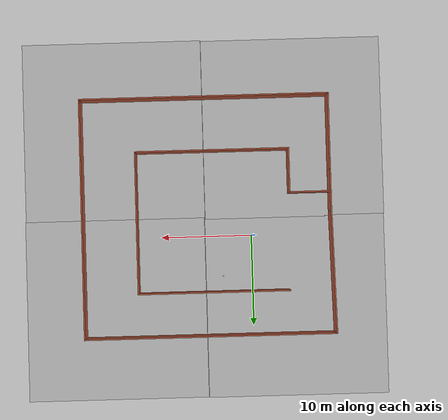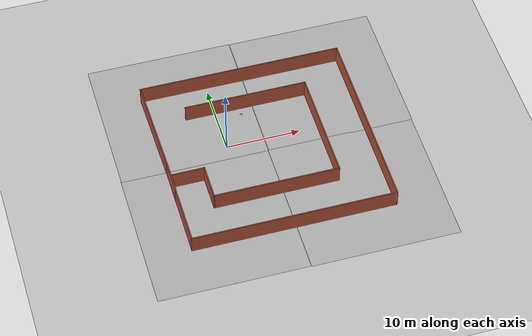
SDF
<sdf version="1.6">
 <world name="default">
  <light name="sun" type="directional">
   <pose>0 0 10 0 -0 0</pose>
   <diffuse>0.8 0.8 0.8 1</diffuse>
   <specular>0.2 0.2 0.2 1</specular>
   <attenuation>
    <range>1000</range>
    <constant>0.9</constant>
    <linear>0.01</linear>
    <quadratic>0.001</quadratic>
   </attenuation>
   <direction>-0.5 0.1 -0.9</direction>
  </light>
  <model name="ground_plane">
   <static>1</static>
   <link name="link">
    <collision name="collision">
     <geometry><plane><normal>0 0 1</normal><size>100 100</size></plane></geometry>
     <surface>
      <contact><collide_bitmask>65535</collide_bitmask></contact>
      <friction><ode><mu>100</mu><mu2>50</mu2></ode></friction>
     </surface>
    </collision>
    <visual name="visual">
     <cast_shadows>0</cast_shadows>
     <geometry><plane><normal>0 0 1</normal><size>100 100</size></plane></geometry>
     <material>
      <script><uri>file://media/materials/scripts/gazebo.material</uri><name>Gazebo/Grey</name></script>
     </material>
    </visual>
   </link>
  </model>
  <gravity>0 0 -9.8</gravity>
  <magnetic_field>6e-06 2.3e-05 -4.2e-05</magnetic_field>
  <atmosphere type="adiabatic"/>
  <physics name="default_physics" default="0" type="ode">
   <max_step_size>0.001</max_step_size>
   <real_time_factor>1</real_time_factor>
   <real_time_update_rate>1000</real_time_update_rate>
  </physics>
  <scene><ambient>0.4 0.4 0.4 1</ambient><background>0.7 0.7 0.7 1</background><shadows>1</shadows></scene>
  <audio><device>default</device></audio>
  <spherical_coordinates>
   <surface_model>EARTH_WGS84</surface_model>
   <latitude_deg>0</latitude_deg>
   <longitude_deg>0</longitude_deg>
   <elevation>0</elevation>
   <heading_deg>0</heading_deg>
  </spherical_coordinates>
  <model name="mazeWorld">
   <pose>4.82132 -2.2343 0 0 -0 0</pose>
   <link name="Wall_10">
    <collision name="Wall_10_Collision">
     <geometry><box><size>13.5523 0.15 2.5</size></box></geometry>
     <pose>0 0 1.25 0 -0 0</pose>
    </collision>
    <visual name="Wall_10_Visual">
     <pose>0 0 1.25 0 -0 0</pose>
     <geometry><box><size>13.5523 0.15 2.5</size></box></geometry>
     <material>
      <script><uri>file://media/materials/scripts/gazebo.material</uri><name>Gazebo/Bricks</name></script>
      <ambient>1 1 1 1</ambient>
     </material>
     <meta><layer>0</layer></meta>
    </visual>
    <pose>-13.6743 6.47431 0 0 -0 -1.55214</pose>
   </link>
   <link name="Wall_12">
    <collision name="Wall_12_Collision">
     <geometry><box><size>16.75 0.15 2.5</size></box></geometry>
     <pose>0 0 1.25 0 -0 0</pose>
    </collision>
    <visual name="Wall_12_Visual">
     <pose>0 0 1.25 0 -0 0</pose>
     <geometry><box><size>16.75 0.15 2.5</size></box></geometry>
     <material>
      <script><uri>file://media/materials/scripts/gazebo.material</uri><name>Gazebo/Bricks</name></script>
      <ambient>1 1 1 1</ambient>
     </material>
     <meta><layer>0</layer></meta>
    </visual>
    <pose>-0.493258 8.36187 0 0 -0 0</pose>
   </link>
   <link name="Wall_13">
    <collision name="Wall_13_Collision">
     <geometry><box><size>15.75 0.15 2.5</size></box></geometry>
     <pose>0 0 1.25 0 -0 0</pose>
    </collision>
    <visual name="Wall_13_Visual">
     <pose>0 0 1.25 0 -0 0</pose>
     <geometry><box><size>15.75 0.15 2.5</size></box></geometry>
     <material>
      <script><uri>file://media/materials/scripts/gazebo.material</uri><name>Gazebo/Bricks</name></script>
      <ambient>1 1 1 1</ambient>
     </material>
     <meta><layer>0</layer></meta>
    </visual>
    <pose>7.80674 0.561867 0 0 -0 -1.5708</pose>
   </link>
   <link name="Wall_14">
    <collision name="Wall_14_Collision">
     <geometry><box><size>17 0.15 2.5</size></box></geometry>
     <pose>0 0 1.25 0 -0 0</pose>
    </collision>
    <visual name="Wall_14_Visual">
     <pose>0 0 1.25 0 -0 0</pose>
     <geometry><box><size>17 0.15 2.5</size></box></geometry>
     <material>
      <script><uri>file://media/materials/scripts/gazebo.material</uri><name>Gazebo/Bricks</name></script>
      <ambient>1 1 1 1</ambient>
     </material>
     <meta><layer>0</layer></meta>
    </visual>
    <pose>-0.618258 -7.23813 0 0 -0 3.14159</pose>
   </link>
   <link name="Wall_15">
    <collision name="Wall_15_Collision">
     <geometry><box><size>5 0.15 2.5</size></box></geometry>
     <pose>0 0 1.25 0 -0 0</pose>
    </collision>
    <visual name="Wall_15_Visual">
     <pose>0 0 1.25 0 -0 0</pose>
     <geometry><box><size>5 0.15 2.5</size></box></geometry>
     <material>
      <script><uri>file://media/materials/scripts/gazebo.material</uri><name>Gazebo/Bricks</name></script>
      <ambient>1 1 1 1</ambient>
     </material>
     <meta><layer>0</layer></meta>
    </visual>
    <pose>-9.04326 -4.81313 0 0 -0 1.5708</pose>
   </link>
   <link name="Wall_16">
    <collision name="Wall_16_Collision">
     <geometry><box><size>4.5 0.15 2.5</size></box></geometry>
     <pose>0 0 1.25 0 -0 0</pose>
    </collision>
    <visual name="Wall_16_Visual">
     <pose>0 0 1.25 0 -0 0</pose>
     <geometry><box><size>4.5 0.15 2.5</size></box></geometry>
     <material>
      <script><uri>file://media/materials/scripts/gazebo.material</uri><name>Gazebo/Bricks</name></script>
      <ambient>1 1 1 1</ambient>
     </material>
     <meta><layer>0</layer></meta>
    </visual>
    <pose>-11.2183 -2.38813 0 0 -0 3.14159</pose>
   </link>
   <link name="Wall_2">
    <collision name="Wall_2_Collision">
     <geometry><box><size>4.75 0.15 2.5</size></box></geometry>
     <pose>0 0 1.25 0 -0 0</pose>
    </collision>
    <visual name="Wall_2_Visual">
     <pose>0 0 1.25 0 -0 0</pose>
     <geometry><box><size>4.75 0.15 2.5</size></box></geometry>
     <material>
      <script><uri>file://media/materials/scripts/gazebo.material</uri><name>Gazebo/Bricks</name></script>
      <ambient>1 1 1 1</ambient>
     </material>
     <meta><layer>0</layer></meta>
    </visual>
    <pose>-13.5493 -2.52569 0 0 -0 1.5708</pose>
   </link>
   <link name="Wall_3">
    <collision name="Wall_3_Collision">
     <geometry><box><size>0.15 0.15 2.5</size></box></geometry>
     <pose>0 0 1.25 0 -0 0</pose>
    </collision>
    <visual name="Wall_3_Visual">
     <pose>0 0 1.25 0 -0 0</pose>
     <geometry><box><size>0.15 0.15 2.5</size></box></geometry>
     <material>
      <script><uri>file://media/materials/scripts/gazebo.material</uri><name>Gazebo/Grey</name></script>
      <ambient>1 1 1 1</ambient>
     </material>
     <meta><layer>0</layer></meta>
    </visual>
    <pose>-13.5493 -0.225692 0 0 -0 0</pose>
   </link>
   <link name="Wall_4">
    <collision name="Wall_4_Collision">
     <geometry><box><size>0.15 0.15 2.5</size></box></geometry>
     <pose>0 0 1.25 0 -0 0</pose>
    </collision>
    <visual name="Wall_4_Visual">
     <pose>0 0 1.25 0 -0 0</pose>
     <geometry><box><size>0.15 0.15 2.5</size></box></geometry>
     <material>
      <script><uri>file://media/materials/scripts/gazebo.material</uri><name>Gazebo/Grey</name></script>
      <ambient>1 1 1 1</ambient>
     </material>
     <meta><layer>0</layer></meta>
    </visual>
    <pose>-13.5493 -0.225692 0 0 -0 0</pose>
   </link>
   <link name="Wall_6">
    <collision name="Wall_6_Collision">
     <geometry><box><size>8.5 0.15 2.5</size></box></geometry>
     <pose>0 0 1.25 0 -0 0</pose>
    </collision>
    <visual name="Wall_6_Visual">
     <pose>0 0 1.25 0 -0 0</pose>
     <geometry><box><size>8.5 0.15 2.5</size></box></geometry>
     <material>
      <script><uri>file://media/materials/scripts/gazebo.material</uri><name>Gazebo/Bricks</name></script>
      <ambient>1 1 1 1</ambient>
     </material>
     <meta><layer>0</layer></meta>
    </visual>
    <pose>-13.5493 -9.00069 0 0 -0 -1.5708</pose>
   </link>
   <link name="Wall_7">
    <collision name="Wall_7_Collision">
     <geometry><box><size>27.5 0.15 2.5</size></box></geometry>
     <pose>0 0 1.25 0 -0 0</pose>
    </collision>
    <visual name="Wall_7_Visual">
     <pose>0 0 1.25 0 -0 0</pose>
     <geometry><box><size>27.5 0.15 2.5</size></box></geometry>
     <material>
      <script><uri>file://media/materials/scripts/gazebo.material</uri><name>Gazebo/Bricks</name></script>
      <ambient>1 1 1 1</ambient>
     </material>
     <meta><layer>0</layer></meta>
    </visual>
    <pose>0.125693 -13.1757 0 0 -0 0</pose>
   </link>
   <link name="Wall_8">
    <collision name="Wall_8_Collision">
     <geometry><box><size>26.5 0.15 2.5</size></box></geometry>
     <pose>0 0 1.25 0 -0 0</pose>
    </collision>
    <visual name="Wall_8_Visual">
     <pose>0 0 1.25 0 -0 0</pose>
     <geometry><box><size>26.5 0.15 2.5</size></box></geometry>
     <material>
      <script><uri>file://media/materials/scripts/gazebo.material</uri><name>Gazebo/Bricks</name></script>
      <ambient>1 1 1 1</ambient>
     </material>
     <meta><layer>0</layer></meta>
    </visual>
    <pose>13.8007 -0.000692 0 0 -0 1.5708</pose>
   </link>
   <link name="Wall_9">
    <collision name="Wall_9_Collision">
     <geometry><box><size>27.75 0.15 2.5</size></box></geometry>
     <pose>0 0 1.25 0 -0 0</pose>
    </collision>
    <visual name="Wall_9_Visual">
     <pose>0 0 1.25 0 -0 0</pose>
     <geometry><box><size>27.75 0.15 2.5</size></box></geometry>
     <material>
      <script><uri>file://media/materials/scripts/gazebo.material</uri><name>Gazebo/Bricks</name></script>
      <ambient>1 1 1 1</ambient>
     </material>
     <meta><layer>0</layer></meta>
    </visual>
    <pose>0.000693 13.1743 0 0 -0 3.14159</pose>
   </link>
   <static>1</static>
  </model>
  <model name="Floor_room">
   <link name="main">
    <pose>0 0 0.01 0 -0 0</pose>
    <collision name="main_Collision"><geometry><box><size>20 20 0.001</size></box></geometry></collision>
    <visual name="main_Visual">
     <geometry><box><size>20 20 0.001</size></box></geometry>
     <material>
      <script>
       <uri>model://Floor_room/materials/scripts</uri>
       <uri>model://Floor_room/materials/textures</uri>
       <name>floor_room</name>
      </script>
     </material>
    </visual>
   </link>
   <static>1</static>
   <pose>-4.88714 -11.9433 0 0 -0 0</pose>
  </model>
  <model name="Floor_room_0">
   <link name="main">
    <pose>0 0 0.01 0 -0 0</pose>
    <collision name="main_Collision"><geometry><box><size>20 20 0.001</size></box></geometry></collision>
    <visual name="main_Visual">
     <geometry><box><size>20 20 0.001</size></box></geometry>
     <material>
      <script>
       <uri>model://Floor_room/materials/scripts</uri>
       <uri>model://Floor_room/materials/textures</uri>
       <name>floor_room</name>
      </script>
     </material>
    </visual>
   </link>
   <static>1</static>
   <pose>-4.83267 7.9217 0 0 -0 0</pose>
  </model>
  <model name="Floor_room_1">
   <link name="main">
    <pose>0 0 0.01 0 -0 0</pose>
    <collision name="main_Collision"><geometry><box><size>20 20 0.001</size></box></geometry></collision>
    <visual name="main_Visual">
     <geometry><box><size>20 20 0.001</size></box></geometry>
     <material>
      <script>
       <uri>model://Floor_room/materials/scripts</uri>
       <uri>model://Floor_room/materials/textures</uri>
       <name>floor_room</name>
      </script>
     </material>
    </visual>
   </link>
   <static>1</static>
   <pose>15.2177 7.87313 0 0 -0 0</pose>
  </model>
  <model name="Floor_room_2">
   <link name="main">
    <pose>0 0 0.01 0 -0 0</pose>
    <collision name="main_Collision"><geometry><box><size>20 20 0.001</size></box></geometry></collision>
    <visual name="main_Visual">
     <geometry><box><size>20 20 0.001</size></box></geometry>
     <material>
      <script>
       <uri>model://Floor_room/materials/scripts</uri>
       <uri>model://Floor_room/materials/textures</uri>
       <name>floor_room</name>
      </script>
     </material>
    </visual>
   </link>
   <static>1</static>
   <pose>15.141 -12.0197 0 0 -0 0</pose>
  </model>
  <model name="cans">
   <link name="link">
    <inertial>
     <mass>0.362409</mass>
     <inertia>
      <ixx>0.00022647</ixx>
      <ixy>0</ixy>
      <ixz>0</ixz>
      <iyy>0.00022647</iyy>
      <iyz>0</iyz>
      <izz>0.0001015</izz>
     </inertia>
     <pose>0 0 0.2 0 -0 0</pose>
    </inertial>
    <self_collide>1</self_collide>
    <kinematic>1</kinematic>
    <visual name="ModelPreview_8::link::visual_1">
     <geometry><cylinder><radius>0.0236665</radius><length>0.0762781</length></cylinder></geometry>
     <material>
      <script><name>Gazebo/Grey</name><uri>file://media/materials/scripts/gazebo.material</uri></script>
      <shader type="vertex"><normal_map>__default__</normal_map></shader>
      <ambient>1 0.3 0.3 1</ambient>
      <diffuse>0.7 0.7 0.7 1</diffuse>
      <specular>0.01 0.01 0.01 1</specular>
      <emissive>0 0 0 1</emissive>
     </material>
    </visual>
    <visual name="visual">
     <geometry><cylinder><radius>0.0236665</radius><length>0.0762781</length></cylinder></geometry>
     <material>
      <script><name>Gazebo/Grey</name><uri>file://media/materials/scripts/gazebo.material</uri></script>
      <shader type="vertex"><normal_map>__default__</normal_map></shader>
      <ambient>1 0.3 0.3 1</ambient>
      <diffuse>0.7 0.7 0.7 1</diffuse>
      <specular>0.01 0.01 0.01 1</specular>
      <emissive>0 0 0 1</emissive>
     </material>
    </visual>
    <collision name="collision">
     <geometry><cylinder><radius>0.023667</radius><length>0.076278</length></cylinder></geometry>
     <surface>
      <friction>
       <ode><mu>1</mu><mu2>1</mu2><fdir1>0 0 0</fdir1><slip1>0</slip1><slip2>0</slip2></ode>
       <torsional>
        <coefficient>1</coefficient>
        <patch_radius>0</patch_radius>
        <surface_radius>0</surface_radius>
        <use_patch_radius>1</use_patch_radius>
        <ode><slip>0</slip></ode>
       </torsional>
      </friction>
      <bounce><restitution_coefficient>0</restitution_coefficient><threshold>1e+06</threshold></bounce>
      <contact>
       <collide_without_contact>0</collide_without_contact>
       <collide_without_contact_bitmask>1</collide_without_contact_bitmask>
       <collide_bitmask>1</collide_bitmask>
       <ode>
        <soft_cfm>0</soft_cfm>
        <soft_erp>0.2</soft_erp>
        <kp>1e+13</kp>
        <kd>1</kd>
        <max_vel>0.01</max_vel>
        <min_depth>0</min_depth>
       </ode>
       <bullet>
        <split_impulse>1</split_impulse>
        <split_impulse_penetration_threshold>-0.01</split_impulse_penetration_threshold>
        <soft_cfm>0</soft_cfm>
        <soft_erp>0.2</soft_erp>
        <kp>1e+13</kp>
        <kd>1</kd>
       </bullet>
      </contact>
     </surface>
    </collision>
   </link>
   <static>0</static>
   <pose>3.20241 4.46899 0.74 0 -0 0</pose>
  </model>
  <model name="cans_0">
   <link name="link">
    <inertial>
     <mass>0.362409</mass>
     <inertia>
      <ixx>0.00022647</ixx>
      <ixy>0</ixy>
      <ixz>0</ixz>
      <iyy>0.00022647</iyy>
      <iyz>0</iyz>
      <izz>0.0001015</izz>
     </inertia>
     <pose>0 0 0.2 0 -0 0</pose>
    </inertial>
    <self_collide>1</self_collide>
    <kinematic>1</kinematic>
    <visual name="ModelPreview_8::link::visual_1">
     <geometry><cylinder><radius>0.0236665</radius><length>0.0762781</length></cylinder></geometry>
     <material>
      <script><name>Gazebo/Grey</name><uri>file://media/materials/scripts/gazebo.material</uri></script>
      <shader type="vertex"><normal_map>__default__</normal_map></shader>
      <ambient>1 0.3 0.3 1</ambient>
      <diffuse>0.7 0.7 0.7 1</diffuse>
      <specular>0.01 0.01 0.01 1</specular>
      <emissive>0 0 0 1</emissive>
     </material>
    </visual>
    <visual name="visual">
     <geometry><cylinder><radius>0.0236665</radius><length>0.0762781</length></cylinder></geometry>
     <material>
      <script><name>Gazebo/Grey</name><uri>file://media/materials/scripts/gazebo.material</uri></script>
      <shader type="vertex"><normal_map>__default__</normal_map></shader>
      <ambient>1 0.3 0.3 1</ambient>
      <diffuse>0.7 0.7 0.7 1</diffuse>
      <specular>0.01 0.01 0.01 1</specular>
      <emissive>0 0 0 1</emissive>
     </material>
    </visual>
    <collision name="collision">
     <geometry><cylinder><radius>0.023667</radius><length>0.076278</length></cylinder></geometry>
     <surface>
      <friction>
       <ode><mu>1</mu><mu2>1</mu2><fdir1>0 0 0</fdir1><slip1>0</slip1><slip2>0</slip2></ode>
       <torsional>
        <coefficient>1</coefficient>
        <patch_radius>0</patch_radius>
        <surface_radius>0</surface_radius>
        <use_patch_radius>1</use_patch_radius>
        <ode><slip>0</slip></ode>
       </torsional>
      </friction>
      <bounce><restitution_coefficient>0</restitution_coefficient><threshold>1e+06</threshold></bounce>
      <contact>
       <collide_without_contact>0</collide_without_contact>
       <collide_without_contact_bitmask>1</collide_without_contact_bitmask>
       <collide_bitmask>1</collide_bitmask>
       <ode>
        <soft_cfm>0</soft_cfm>
        <soft_erp>0.2</soft_erp>
        <kp>1e+13</kp>
        <kd>1</kd>
        <max_vel>0.01</max_vel>
        <min_depth>0</min_depth>
       </ode>
       <bullet>
        <split_impulse>1</split_impulse>
        <split_impulse_penetration_threshold>-0.01</split_impulse_penetration_threshold>
        <soft_cfm>0</soft_cfm>
        <soft_erp>0.2</soft_erp>
        <kp>1e+13</kp>
        <kd>1</kd>
       </bullet>
      </contact>
     </surface>
    </collision>
   </link>
   <static>0</static>
   <pose>3.083 4.43905 0.74 0 -0 0</pose>
  </model>
  <model name="cans_1">
   <link name="link">
    <inertial>
     <mass>0.362409</mass>
     <inertia>
      <ixx>0.00022647</ixx>
      <ixy>0</ixy>
      <ixz>0</ixz>
      <iyy>0.00022647</iyy>
      <iyz>0</iyz>
      <izz>0.0001015</izz>
     </inertia>
     <pose>0 0 0.2 0 -0 0</pose>
    </inertial>
    <self_collide>1</self_collide>
    <kinematic>1</kinematic>
    <visual name="ModelPreview_8::link::visual_1">
     <geometry><cylinder><radius>0.0236665</radius><length>0.0762781</length></cylinder></geometry>
     <material>
      <script><name>Gazebo/Grey</name><uri>file://media/materials/scripts/gazebo.material</uri></script>
      <shader type="vertex"><normal_map>__default__</normal_map></shader>
      <ambient>1 0.3 0.3 1</ambient>
      <diffuse>0.7 0.7 0.7 1</diffuse>
      <specular>0.01 0.01 0.01 1</specular>
      <emissive>0 0 0 1</emissive>
     </material>
    </visual>
    <visual name="visual">
     <geometry><cylinder><radius>0.0236665</radius><length>0.0762781</length></cylinder></geometry>
     <material>
      <script><name>Gazebo/Grey</name><uri>file://media/materials/scripts/gazebo.material</uri></script>
      <shader type="vertex"><normal_map>__default__</normal_map></shader>
      <ambient>1 0.3 0.3 1</ambient>
      <diffuse>0.7 0.7 0.7 1</diffuse>
      <specular>0.01 0.01 0.01 1</specular>
      <emissive>0 0 0 1</emissive>
     </material>
    </visual>
    <collision name="collision">
     <geometry><cylinder><radius>0.023667</radius><length>0.076278</length></cylinder></geometry>
     <surface>
      <friction>
       <ode><mu>1</mu><mu2>1</mu2><fdir1>0 0 0</fdir1><slip1>0</slip1><slip2>0</slip2></ode>
       <torsional>
        <coefficient>1</coefficient>
        <patch_radius>0</patch_radius>
        <surface_radius>0</surface_radius>
        <use_patch_radius>1</use_patch_radius>
        <ode><slip>0</slip></ode>
       </torsional>
      </friction>
      <bounce><restitution_coefficient>0</restitution_coefficient><threshold>1e+06</threshold></bounce>
      <contact>
       <collide_without_contact>0</collide_without_contact>
       <collide_without_contact_bitmask>1</collide_without_contact_bitmask>
       <collide_bitmask>1</collide_bitmask>
       <ode>
        <soft_cfm>0</soft_cfm>
        <soft_erp>0.2</soft_erp>
        <kp>1e+13</kp>
        <kd>1</kd>
        <max_vel>0.01</max_vel>
        <min_depth>0</min_depth>
       </ode>
       <bullet>
        <split_impulse>1</split_impulse>
        <split_impulse_penetration_threshold>-0.01</split_impulse_penetration_threshold>
        <soft_cfm>0</soft_cfm>
        <soft_erp>0.2</soft_erp>
        <kp>1e+13</kp>
        <kd>1</kd>
       </bullet>
      </contact>
     </surface>
    </collision>
   </link>
   <static>0</static>
   <pose>3.33036 4.42161 0.74 0 -0 0</pose>
  </model>
 </world>
</sdf>
